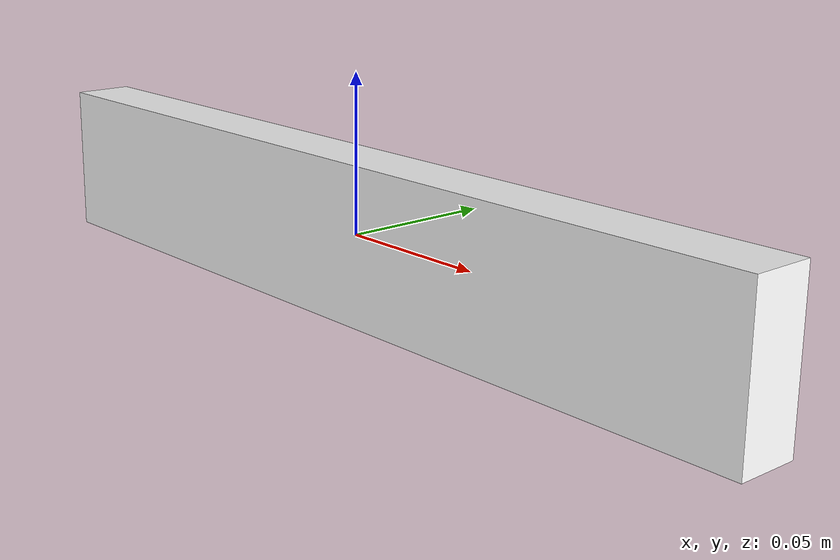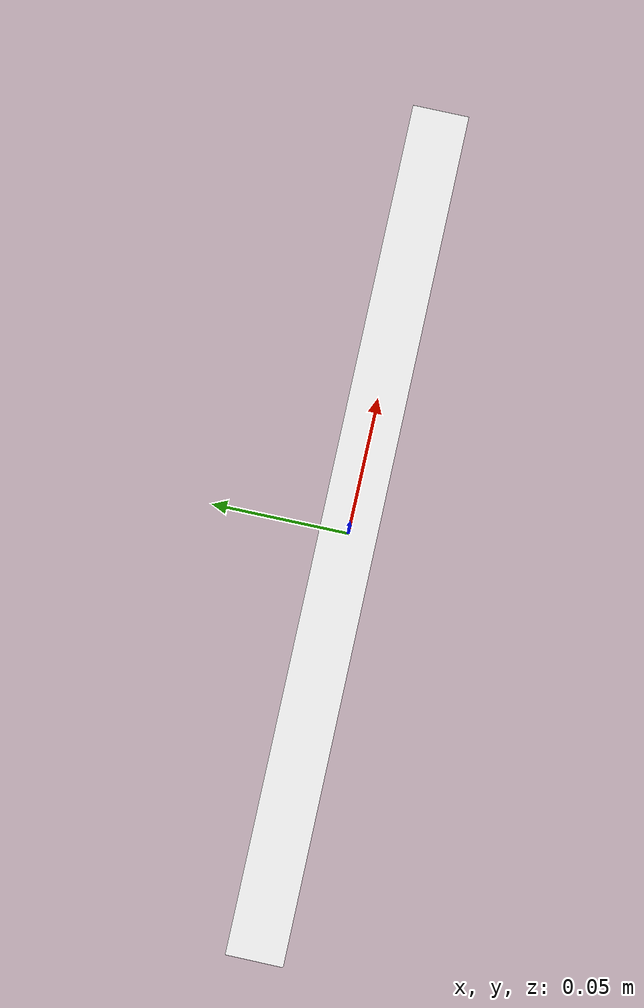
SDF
<?xml version="1.0"?>
<sdf version="1.9">
  <model name="traffic_bar">

    <link name="bar_link">
      <pose>0 0 0 0 0 0</pose>

      <inertial>
        <mass>0.1</mass>
        <inertia>
          <ixx>0.0001</ixx>
          <iyy>0.0001</iyy>
          <izz>0.0001</izz>
          <ixy>0</ixy>
          <ixz>0</ixz>
          <iyz>0</iyz>
        </inertia>
      </inertial>

      <collision name="collision">
        <geometry>
          <box>
            <size>0.30 0.02 0.05</size>
          </box>
        </geometry>
      </collision>

      <visual name="visual">
        <geometry>
          <box>
            <size>0.30 0.02 0.05</size>
          </box>
        </geometry>
        <material>
          <ambient>1 1 1 1</ambient>
          <diffuse>1 1 1 1</diffuse>
          <specular>0.1 0.1 0.1 1</specular>
          <pbr>
            <metal>
              <albedo_map>model://turtlebot3_autorace/traffic_bar/materials/textures/traffic_bar.png</albedo_map>
            </metal>
          </pbr>
        </material>
      </visual>
    </link>

    <joint name="bar_joint" type="revolute">
      <parent>world</parent>
      <child>bar_link</child>
      <pose>-0.15 0 0 0 0 0</pose>
      <axis>
        <xyz>0 1 0</xyz>
        <limit>
          <lower>-1.5708</lower>
          <upper>1.5708</upper>
          <velocity>2.0</velocity>
        </limit>
        <dynamics>
          <damping>0.2</damping>
        </dynamics>
      </axis>
    </joint>

    <plugin
      filename="gz-sim-joint-position-controller-system"
      name="gz::sim::systems::JointPositionController">
      <joint_name>bar_joint</joint_name>
      <topic>/model/traffic_bar/joint/bar_joint/0/cmd_pos</topic>
      <p_gain>20.0</p_gain>
      <i_gain>0.0</i_gain>
      <d_gain>1.0</d_gain>
      <i_max>0.0</i_max>
      <i_min>0.0</i_min>
      <cmd_max>10.0</cmd_max>
      <cmd_min>-10.0</cmd_min>
    </plugin>

    <plugin
      filename="libtraffic_bar_plugin.so"
      name="turtlebot3_gazebo::TrafficBarPlugin">
      <topic>/model/traffic_bar/joint/bar_joint/0/cmd_pos</topic>
      <down_position>0.0</down_position>
      <up_position>-1.5708</up_position>
      <down_duration>5.0</down_duration>
      <up_duration>10.0</up_duration>
      <start_open>false</start_open>
    </plugin>

  </model>
</sdf>
